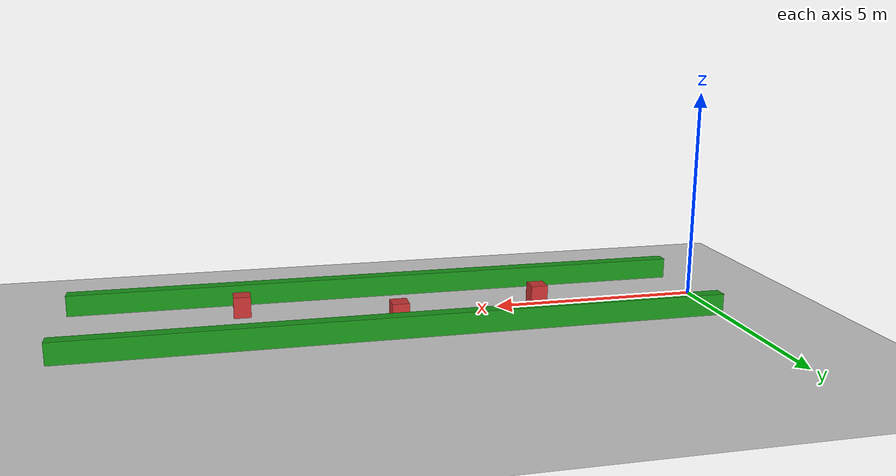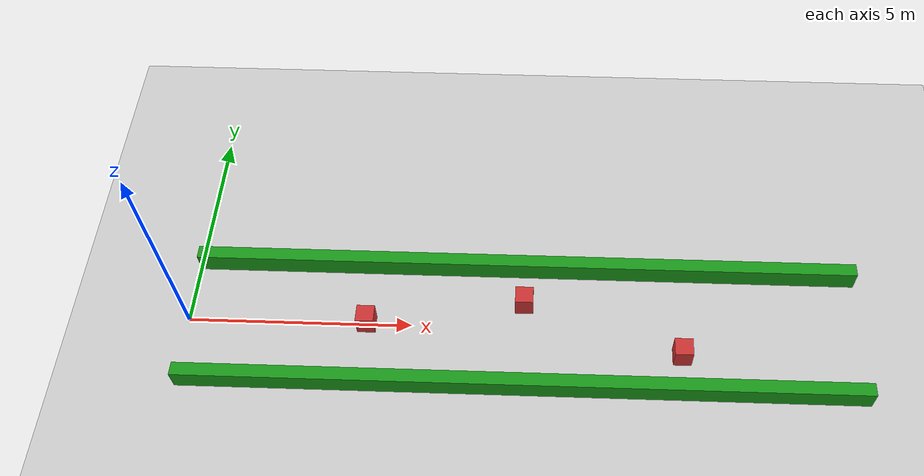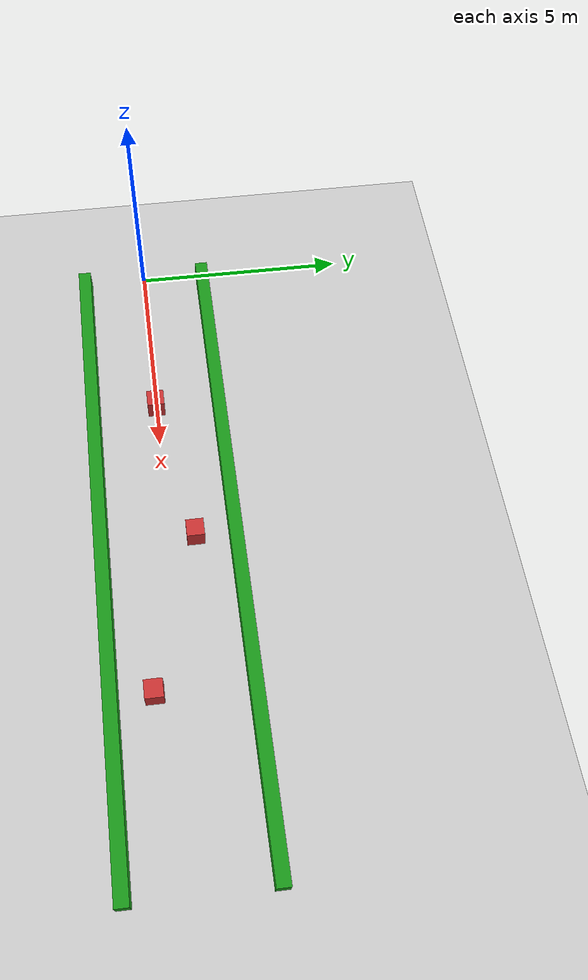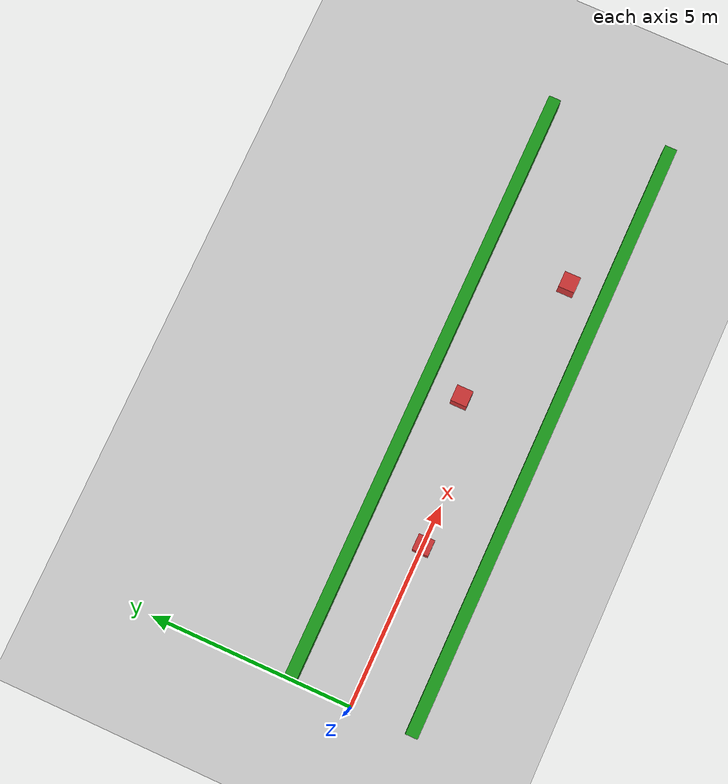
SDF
<?xml version="1.0" ?>
<sdf version="1.9">
  <world name="default">
    <physics name="1ms" type="ignored">
      <max_step_size>0.001</max_step_size>
      <real_time_factor>1.0</real_time_factor>
    </physics>

    <plugin filename="gz-sim-physics-system" name="gz::sim::systems::Physics"/>
    <plugin filename="gz-sim-user-commands-system" name="gz::sim::systems::UserCommands"/>
    <plugin filename="gz-sim-scene-broadcaster-system" name="gz::sim::systems::SceneBroadcaster"/>
    <plugin filename="gz-sim-sensors-system" name="gz::sim::systems::Sensors">
      <render_engine>ogre2</render_engine>
    </plugin>

    <light type="directional" name="sun">
      <cast_shadows>true</cast_shadows>
      <pose>0 0 10 0 0 0</pose>
      <diffuse>0.8 0.8 0.8 1</diffuse>
      <specular>0.2 0.2 0.2 1</specular>
      <direction>-0.5 0.1 -0.9</direction>
    </light>

    <model name="ground_plane">
      <static>true</static>
      <link name="link">
        <collision name="collision">
          <geometry><plane><normal>0 0 1</normal><size>100 100</size></plane></geometry>
        </collision>
        <visual name="visual">
          <geometry><plane><normal>0 0 1</normal><size>100 100</size></plane></geometry>
          <material>
            <ambient>0.8 0.8 0.8 1</ambient>
            <diffuse>0.8 0.8 0.8 1</diffuse>
          </material>
        </visual>
      </link>
    </model>

    <!-- ================= 长距离农田垄沟场景 ================= -->

    <!-- 左侧作物垄（长 15 米，中心在 X=7.5，总长从 0 到 15） -->
    <model name="crop_row_left">
      <static>true</static>
      <pose>7.5 1.5 0.25 0 0 0</pose>
      <link name="link">
        <collision name="collision"><geometry><box><size>15.0 0.3 0.5</size></box></geometry></collision>
        <visual name="visual">
          <geometry><box><size>15.0 0.3 0.5</size></box></geometry>
          <material><ambient>0.1 0.6 0.1 1</ambient><diffuse>0.1 0.6 0.1 1</diffuse></material>
        </visual>
      </link>
    </model>

    <!-- 右侧作物垄（长 15 米） -->
    <model name="crop_row_right">
      <static>true</static>
      <pose>7.5 -1.5 0.25 0 0 0</pose>
      <link name="link">
        <collision name="collision"><geometry><box><size>15.0 0.3 0.5</size></box></geometry></collision>
        <visual name="visual">
          <geometry><box><size>15.0 0.3 0.5</size></box></geometry>
          <material><ambient>0.1 0.6 0.1 1</ambient><diffuse>0.1 0.6 0.1 1</diffuse></material>
        </visual>
      </link>
    </model>

    <!-- ================= 连续障碍物阵 ================= -->
    <!-- 第一个：正中间 (X=4米) -->
    <model name="obstacle_center">
      <static>true</static>
      <pose>4.0 0.0 0.25 0 0 0</pose>
      <link name="link">
        <collision name="collision"><geometry><box><size>0.4 0.4 0.5</size></box></geometry></collision>
        <visual name="visual">
          <geometry><box><size>0.4 0.4 0.5</size></box></geometry>
          <material><ambient>0.8 0.2 0.2 1</ambient><diffuse>0.8 0.2 0.2 1</diffuse></material>
        </visual>
      </link>
    </model>

    <!-- 第二个：偏左侧 (X=7.5米, Y=0.6米) -->
    <model name="obstacle_left">
      <static>true</static>
      <pose>7.5 0.6 0.25 0 0 0</pose>
      <link name="link">
        <collision name="collision"><geometry><box><size>0.4 0.4 0.5</size></box></geometry></collision>
        <visual name="visual">
          <geometry><box><size>0.4 0.4 0.5</size></box></geometry>
          <material><ambient>0.8 0.2 0.2 1</ambient><diffuse>0.8 0.2 0.2 1</diffuse></material>
        </visual>
      </link>
    </model>

    <!-- 第三个：偏右侧 (X=11米, Y=-0.6米) -->
    <model name="obstacle_right">
      <static>true</static>
      <pose>11.0 -0.6 0.25 0 0 0</pose>
      <link name="link">
        <collision name="collision"><geometry><box><size>0.4 0.4 0.5</size></box></geometry></collision>
        <visual name="visual">
          <geometry><box><size>0.4 0.4 0.5</size></box></geometry>
          <material><ambient>0.8 0.2 0.2 1</ambient><diffuse>0.8 0.2 0.2 1</diffuse></material>
        </visual>
      </link>
    </model>

  </world>
</sdf>
